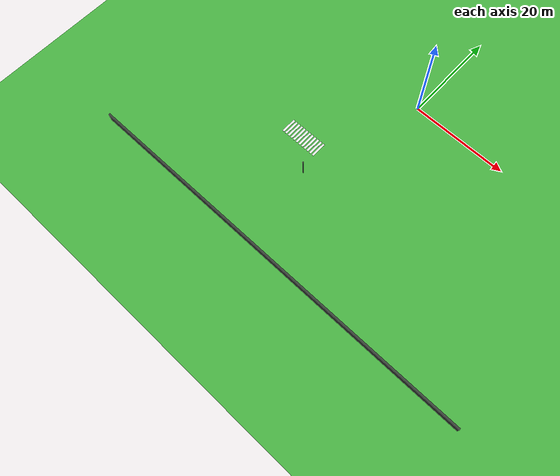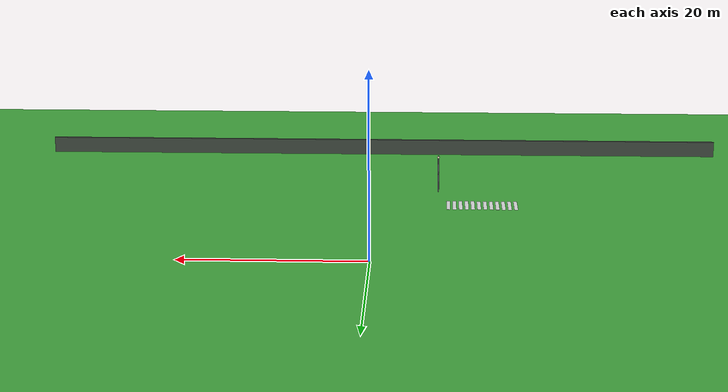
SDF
<sdf version="1.10">
 <world name="city_second">
  <model name="ground_plane">
   <static>true</static>
   <link name="link">
    <collision name="collision">
     <geometry><plane><normal>0 0 1</normal><size>300 300</size></plane></geometry>
    </collision>
    <visual name="visual">
     <geometry><plane><normal>0 0 1</normal><size>300 300</size></plane></geometry>
     <material>
      <ambient>0.280000001 0.689999998 0.25999999 1</ambient>
      <diffuse>0.280000001 0.689999998 0.25999999 1</diffuse>
      <specular>0.0299999993 0.0299999993 0.0299999993 1</specular>
     </material>
    </visual>
    <inertial>
     <mass>1</mass>
     <inertia><ixx>1</ixx><ixy>0</ixy><ixz>0</ixz><iyy>1</iyy><iyz>0</iyz><izz>1</izz></inertia>
    </inertial>
   </link>
  </model>
  <model name="fence_south">
   <static>true</static>
   <pose>0 -42 0.94999999999999996 0 0 0</pose>
   <link name="link">
    <collision name="collision">
     <geometry><box><size>84.5 0.34999999999999998 1.8999999999999999</size></box></geometry>
    </collision>
    <visual name="visual">
     <geometry><box><size>84.5 0.34999999999999998 1.8999999999999999</size></box></geometry>
     <material>
      <ambient>0.230000004 0.270000011 0.230000004 1</ambient>
      <diffuse>0.230000004 0.270000011 0.230000004 1</diffuse>
      <specular>0.0299999993 0.0299999993 0.0299999993 1</specular>
     </material>
    </visual>
    <inertial>
     <mass>1</mass>
     <inertia><ixx>1</ixx><ixy>0</ixy><ixz>0</ixz><iyy>1</iyy><iyz>0</iyz><izz>1</izz></inertia>
    </inertial>
   </link>
  </model>
  <model name="crosswalk_h_1_1_south_7_3">
   <static>true</static>
   <pose>-12.1189 -19.828700000000001 0.017000000000000001 0 0 0</pose>
   <link name="stripe_1">
    <collision name="collision">
     <geometry><box><size>0.41999999999999998 3.2000000000000002 0.01</size></box></geometry>
    </collision>
    <visual name="visual">
     <geometry><box><size>0.41999999999999998 3.2000000000000002 0.01</size></box></geometry>
     <material>
      <ambient>0.920000017 0.920000017 0.930000007 1</ambient>
      <diffuse>0.920000017 0.920000017 0.930000007 1</diffuse>
      <specular>0.0299999993 0.0299999993 0.0299999993 1</specular>
     </material>
    </visual>
    <pose>-3.8500000000000001 0 0 0 0 0</pose>
    <inertial>
     <mass>1</mass>
     <inertia><ixx>1</ixx><ixy>0</ixy><ixz>0</ixz><iyy>1</iyy><iyz>0</iyz><izz>1</izz></inertia>
    </inertial>
   </link>
   <link name="stripe_2">
    <collision name="collision">
     <geometry><box><size>0.41999999999999998 3.2000000000000002 0.01</size></box></geometry>
    </collision>
    <visual name="visual">
     <geometry><box><size>0.41999999999999998 3.2000000000000002 0.01</size></box></geometry>
     <material>
      <ambient>0.920000017 0.920000017 0.930000007 1</ambient>
      <diffuse>0.920000017 0.920000017 0.930000007 1</diffuse>
      <specular>0.0299999993 0.0299999993 0.0299999993 1</specular>
     </material>
    </visual>
    <pose>-3.1500000000000004 0 0 0 0 0</pose>
    <inertial>
     <mass>1</mass>
     <inertia><ixx>1</ixx><ixy>0</ixy><ixz>0</ixz><iyy>1</iyy><iyz>0</iyz><izz>1</izz></inertia>
    </inertial>
   </link>
   <link name="stripe_3">
    <collision name="collision">
     <geometry><box><size>0.41999999999999998 3.2000000000000002 0.01</size></box></geometry>
    </collision>
    <visual name="visual">
     <geometry><box><size>0.41999999999999998 3.2000000000000002 0.01</size></box></geometry>
     <material>
      <ambient>0.920000017 0.920000017 0.930000007 1</ambient>
      <diffuse>0.920000017 0.920000017 0.930000007 1</diffuse>
      <specular>0.0299999993 0.0299999993 0.0299999993 1</specular>
     </material>
    </visual>
    <pose>-2.4499999999999993 0 0 0 0 0</pose>
    <inertial>
     <mass>1</mass>
     <inertia><ixx>1</ixx><ixy>0</ixy><ixz>0</ixz><iyy>1</iyy><iyz>0</iyz><izz>1</izz></inertia>
    </inertial>
   </link>
   <link name="stripe_4">
    <collision name="collision">
     <geometry><box><size>0.41999999999999998 3.2000000000000002 0.01</size></box></geometry>
    </collision>
    <visual name="visual">
     <geometry><box><size>0.41999999999999998 3.2000000000000002 0.01</size></box></geometry>
     <material>
      <ambient>0.920000017 0.920000017 0.930000007 1</ambient>
      <diffuse>0.920000017 0.920000017 0.930000007 1</diffuse>
      <specular>0.0299999993 0.0299999993 0.0299999993 1</specular>
     </material>
    </visual>
    <pose>-1.75 0 0 0 0 0</pose>
    <inertial>
     <mass>1</mass>
     <inertia><ixx>1</ixx><ixy>0</ixy><ixz>0</ixz><iyy>1</iyy><iyz>0</iyz><izz>1</izz></inertia>
    </inertial>
   </link>
   <link name="stripe_5">
    <collision name="collision">
     <geometry><box><size>0.41999999999999998 3.2000000000000002 0.01</size></box></geometry>
    </collision>
    <visual name="visual">
     <geometry><box><size>0.41999999999999998 3.2000000000000002 0.01</size></box></geometry>
     <material>
      <ambient>0.920000017 0.920000017 0.930000007 1</ambient>
      <diffuse>0.920000017 0.920000017 0.930000007 1</diffuse>
      <specular>0.0299999993 0.0299999993 0.0299999993 1</specular>
     </material>
    </visual>
    <pose>-1.0500000000000007 0 0 0 0 0</pose>
    <inertial>
     <mass>1</mass>
     <inertia><ixx>1</ixx><ixy>0</ixy><ixz>0</ixz><iyy>1</iyy><iyz>0</iyz><izz>1</izz></inertia>
    </inertial>
   </link>
   <link name="stripe_6">
    <collision name="collision">
     <geometry><box><size>0.41999999999999998 3.2000000000000002 0.01</size></box></geometry>
    </collision>
    <visual name="visual">
     <geometry><box><size>0.41999999999999998 3.2000000000000002 0.01</size></box></geometry>
     <material>
      <ambient>0.920000017 0.920000017 0.930000007 1</ambient>
      <diffuse>0.920000017 0.920000017 0.930000007 1</diffuse>
      <specular>0.0299999993 0.0299999993 0.0299999993 1</specular>
     </material>
    </visual>
    <pose>-0.34999999999999964 0 0 0 0 0</pose>
    <inertial>
     <mass>1</mass>
     <inertia><ixx>1</ixx><ixy>0</ixy><ixz>0</ixz><iyy>1</iyy><iyz>0</iyz><izz>1</izz></inertia>
    </inertial>
   </link>
   <link name="stripe_7">
    <collision name="collision">
     <geometry><box><size>0.41999999999999998 3.2000000000000002 0.01</size></box></geometry>
    </collision>
    <visual name="visual">
     <geometry><box><size>0.41999999999999998 3.2000000000000002 0.01</size></box></geometry>
     <material>
      <ambient>0.920000017 0.920000017 0.930000007 1</ambient>
      <diffuse>0.920000017 0.920000017 0.930000007 1</diffuse>
      <specular>0.0299999993 0.0299999993 0.0299999993 1</specular>
     </material>
    </visual>
    <pose>0.34999999999999964 0 0 0 0 0</pose>
    <inertial>
     <mass>1</mass>
     <inertia><ixx>1</ixx><ixy>0</ixy><ixz>0</ixz><iyy>1</iyy><iyz>0</iyz><izz>1</izz></inertia>
    </inertial>
   </link>
   <link name="stripe_8">
    <collision name="collision">
     <geometry><box><size>0.41999999999999998 3.2000000000000002 0.01</size></box></geometry>
    </collision>
    <visual name="visual">
     <geometry><box><size>0.41999999999999998 3.2000000000000002 0.01</size></box></geometry>
     <material>
      <ambient>0.920000017 0.920000017 0.930000007 1</ambient>
      <diffuse>0.920000017 0.920000017 0.930000007 1</diffuse>
      <specular>0.0299999993 0.0299999993 0.0299999993 1</specular>
     </material>
    </visual>
    <pose>1.0500000000000007 0 0 0 0 0</pose>
    <inertial>
     <mass>1</mass>
     <inertia><ixx>1</ixx><ixy>0</ixy><ixz>0</ixz><iyy>1</iyy><iyz>0</iyz><izz>1</izz></inertia>
    </inertial>
   </link>
   <link name="stripe_9">
    <collision name="collision">
     <geometry><box><size>0.41999999999999998 3.2000000000000002 0.01</size></box></geometry>
    </collision>
    <visual name="visual">
     <geometry><box><size>0.41999999999999998 3.2000000000000002 0.01</size></box></geometry>
     <material>
      <ambient>0.920000017 0.920000017 0.930000007 1</ambient>
      <diffuse>0.920000017 0.920000017 0.930000007 1</diffuse>
      <specular>0.0299999993 0.0299999993 0.0299999993 1</specular>
     </material>
    </visual>
    <pose>1.75 0 0 0 0 0</pose>
    <inertial>
     <mass>1</mass>
     <inertia><ixx>1</ixx><ixy>0</ixy><ixz>0</ixz><iyy>1</iyy><iyz>0</iyz><izz>1</izz></inertia>
    </inertial>
   </link>
   <link name="stripe_10">
    <collision name="collision">
     <geometry><box><size>0.41999999999999998 3.2000000000000002 0.01</size></box></geometry>
    </collision>
    <visual name="visual">
     <geometry><box><size>0.41999999999999998 3.2000000000000002 0.01</size></box></geometry>
     <material>
      <ambient>0.920000017 0.920000017 0.930000007 1</ambient>
      <diffuse>0.920000017 0.920000017 0.930000007 1</diffuse>
      <specular>0.0299999993 0.0299999993 0.0299999993 1</specular>
     </material>
    </visual>
    <pose>2.4499999999999993 0 0 0 0 0</pose>
    <inertial>
     <mass>1</mass>
     <inertia><ixx>1</ixx><ixy>0</ixy><ixz>0</ixz><iyy>1</iyy><iyz>0</iyz><izz>1</izz></inertia>
    </inertial>
   </link>
   <link name="stripe_11">
    <collision name="collision">
     <geometry><box><size>0.41999999999999998 3.2000000000000002 0.01</size></box></geometry>
    </collision>
    <visual name="visual">
     <geometry><box><size>0.41999999999999998 3.2000000000000002 0.01</size></box></geometry>
     <material>
      <ambient>0.920000017 0.920000017 0.930000007 1</ambient>
      <diffuse>0.920000017 0.920000017 0.930000007 1</diffuse>
      <specular>0.0299999993 0.0299999993 0.0299999993 1</specular>
     </material>
    </visual>
    <pose>3.1500000000000004 0 0 0 0 0</pose>
    <inertial>
     <mass>1</mass>
     <inertia><ixx>1</ixx><ixy>0</ixy><ixz>0</ixz><iyy>1</iyy><iyz>0</iyz><izz>1</izz></inertia>
    </inertial>
   </link>
   <link name="stripe_12">
    <collision name="collision">
     <geometry><box><size>0.41999999999999998 3.2000000000000002 0.01</size></box></geometry>
    </collision>
    <visual name="visual">
     <geometry><box><size>0.41999999999999998 3.2000000000000002 0.01</size></box></geometry>
     <material>
      <ambient>0.920000017 0.920000017 0.930000007 1</ambient>
      <diffuse>0.920000017 0.920000017 0.930000007 1</diffuse>
      <specular>0.0299999993 0.0299999993 0.0299999993 1</specular>
     </material>
    </visual>
    <pose>3.8499999999999996 0 0 0 0 0</pose>
    <inertial>
     <mass>1</mass>
     <inertia><ixx>1</ixx><ixy>0</ixy><ixz>0</ixz><iyy>1</iyy><iyz>0</iyz><izz>1</izz></inertia>
    </inertial>
   </link>
  </model>
  <model name="lamp_1_2_4">
   <static>true</static>
   <pose>-7.1247800000000003 -25.261600000000001 2.2000000000000002 0 0 0</pose>
   <link name="link">
    <collision name="collision">
     <geometry>
      <cylinder><radius>0.080000000000000002</radius><length>4.4000000000000004</length></cylinder>
     </geometry>
    </collision>
    <visual name="pole">
     <geometry>
      <cylinder><radius>0.080000000000000002</radius><length>4.4000000000000004</length></cylinder>
     </geometry>
     <material>
      <ambient>0.349999994 0.360000014 0.379999995 1</ambient>
      <diffuse>0.349999994 0.360000014 0.379999995 1</diffuse>
      <specular>0.0299999993 0.0299999993 0.0299999993 1</specular>
     </material>
    </visual>
    <visual name="lamp_head">
     <pose>0 0 2 0 0 0</pose>
     <geometry><sphere><radius>0.14000000000000001</radius></sphere></geometry>
     <material>
      <ambient>0.959999979 0.939999998 0.779999971 1</ambient>
      <diffuse>0.959999979 0.939999998 0.779999971 1</diffuse>
      <specular>0.0299999993 0.0299999993 0.0299999993 1</specular>
     </material>
    </visual>
    <inertial>
     <mass>1</mass>
     <inertia><ixx>1</ixx><ixy>0</ixy><ixz>0</ixz><iyy>1</iyy><iyz>0</iyz><izz>1</izz></inertia>
    </inertial>
   </link>
  </model>
 </world>
</sdf>
